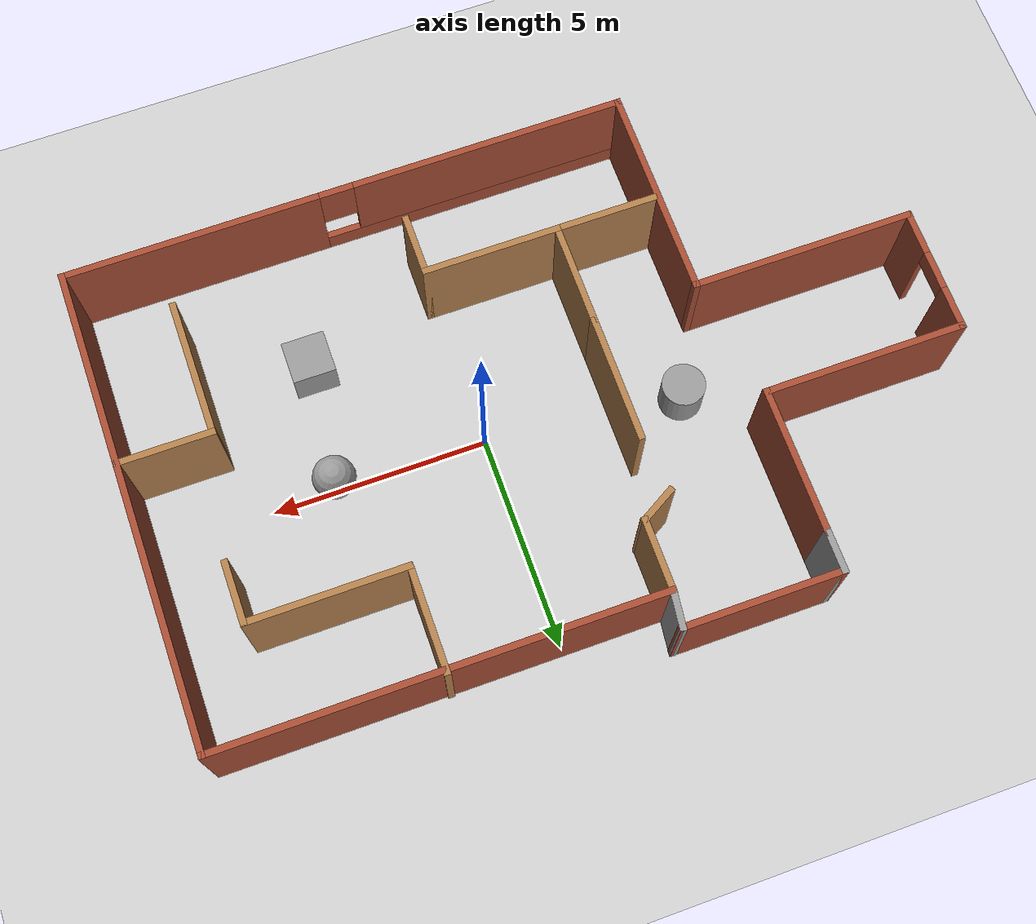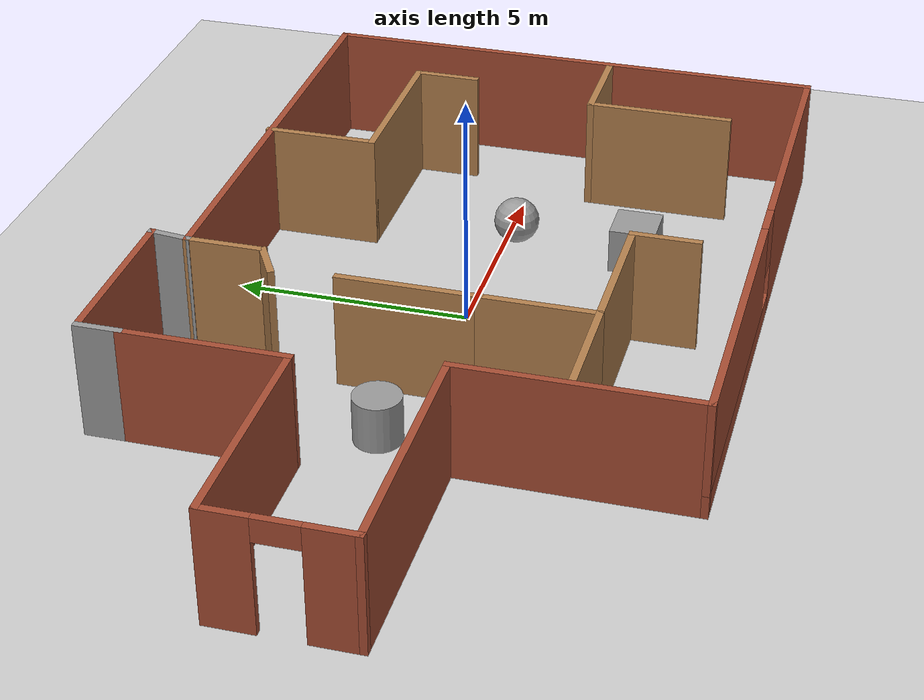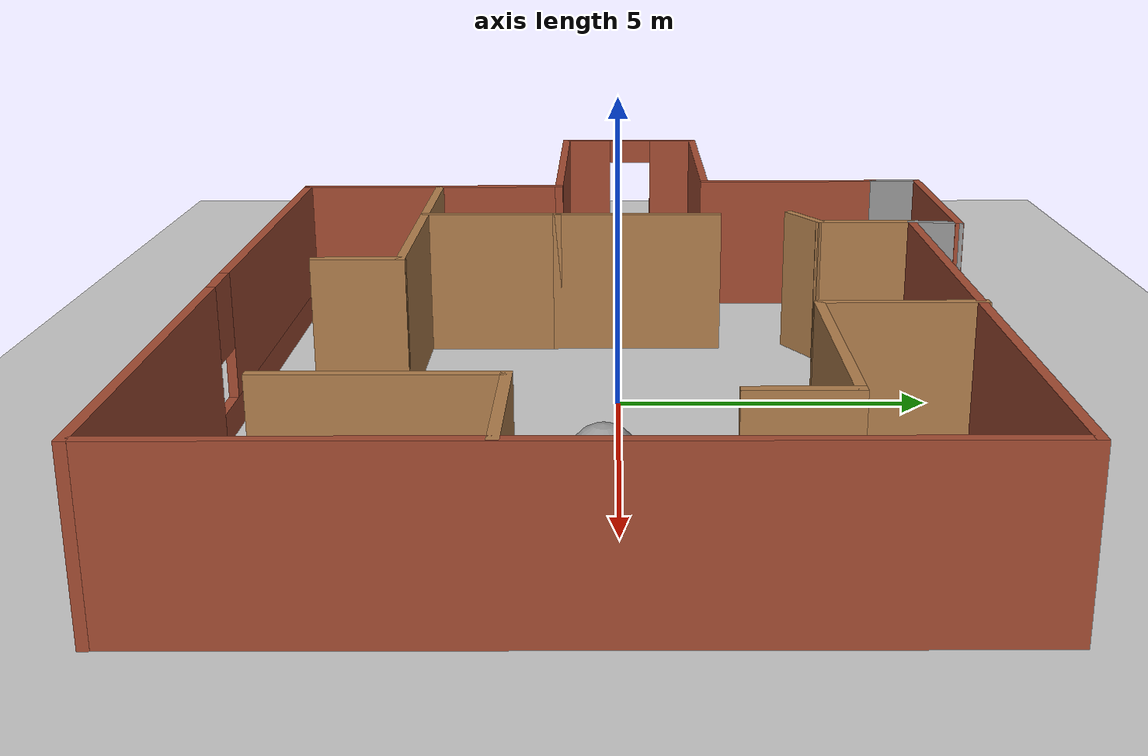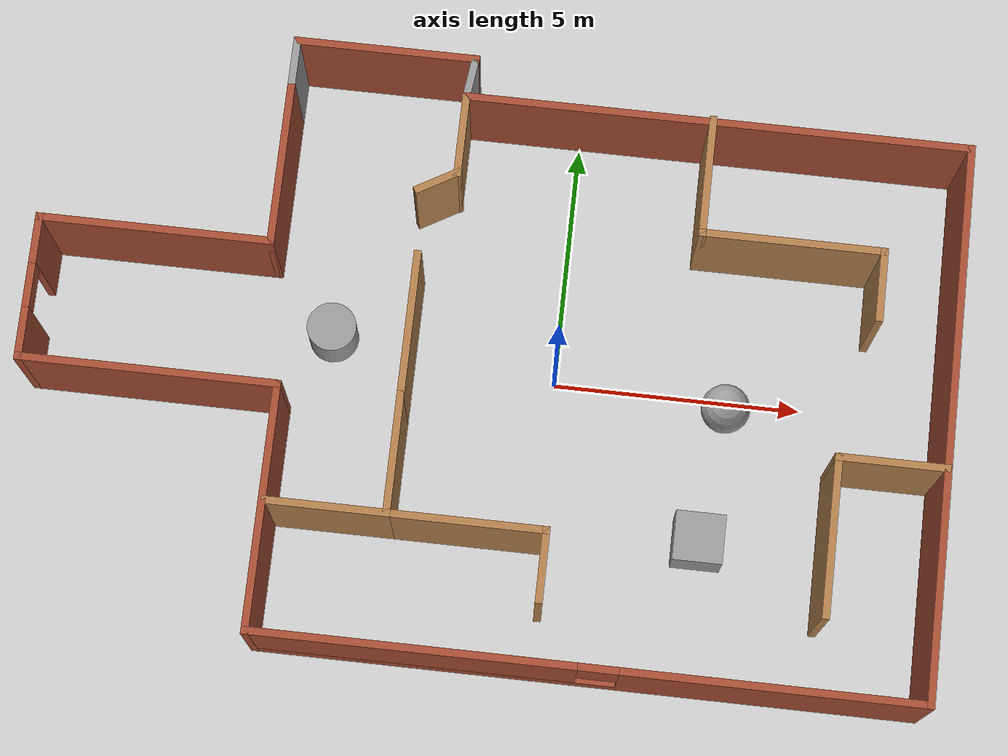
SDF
<sdf version="1.7">
 <world name="default">
  <light name="sun" type="directional">
   <pose>0 0 10 0 -0 0</pose>
   <diffuse>0.8 0.8 0.8 1</diffuse>
   <specular>0.2 0.2 0.2 1</specular>
   <attenuation>
    <range>1000</range>
    <constant>0.9</constant>
    <linear>0.01</linear>
    <quadratic>0.001</quadratic>
   </attenuation>
   <direction>-0.5 0.1 -0.9</direction>
   <spot><inner_angle>0</inner_angle><outer_angle>0</outer_angle><falloff>0</falloff></spot>
  </light>
  <model name="ground_plane">
   <static>1</static>
   <link name="link">
    <collision name="collision">
     <geometry><plane><normal>0 0 1</normal><size>100 100</size></plane></geometry>
     <surface>
      <contact><collide_bitmask>65535</collide_bitmask></contact>
      <friction><ode><mu>100</mu><mu2>50</mu2></ode></friction>
     </surface>
    </collision>
    <visual name="visual">
     <cast_shadows>0</cast_shadows>
     <geometry><plane><normal>0 0 1</normal><size>100 100</size></plane></geometry>
     <material>
      <script><uri>file://media/materials/scripts/gazebo.material</uri><name>Gazebo/Grey</name></script>
     </material>
    </visual>
   </link>
  </model>
  <gravity>0 0 -9.8</gravity>
  <magnetic_field>6e-06 2.3e-05 -4.2e-05</magnetic_field>
  <atmosphere type="adiabatic"/>
  <physics type="ode">
   <max_step_size>0.001</max_step_size>
   <real_time_factor>1</real_time_factor>
   <real_time_update_rate>1000</real_time_update_rate>
  </physics>
  <scene><ambient>0.4 0.4 0.4 1</ambient><background>0.7 0.7 0.7 1</background><shadows>1</shadows></scene>
  <audio><device>default</device></audio>
  <spherical_coordinates>
   <surface_model>EARTH_WGS84</surface_model>
   <latitude_deg>0</latitude_deg>
   <longitude_deg>0</longitude_deg>
   <elevation>0</elevation>
   <heading_deg>0</heading_deg>
  </spherical_coordinates>
  <model name="2025.6.19">
   <pose>-1.35006 -0.011831 0 0 -0 0</pose>
   <link name="Wall_0">
    <collision name="Wall_0_Collision">
     <geometry><box><size>2.5 0.15 2.5</size></box></geometry>
     <pose>0 0 1.25 0 -0 0</pose>
    </collision>
    <visual name="Wall_0_Visual">
     <pose>0 0 1.25 0 -0 0</pose>
     <geometry><box><size>2.5 0.15 2.5</size></box></geometry>
     <material>
      <script><uri>file://media/materials/scripts/gazebo.material</uri><name>Gazebo/Wood</name></script>
      <ambient>1 1 1 1</ambient>
     </material>
     <meta><layer>0</layer></meta>
    </visual>
    <pose>-1.58994 -2.23317 0 0 -0 -1.5708</pose>
   </link>
   <link name="Wall_10">
    <collision name="Wall_10_Collision">
     <geometry><box><size>5.25 0.15 2.5</size></box></geometry>
     <pose>0 0 1.25 0 -0 0</pose>
    </collision>
    <visual name="Wall_10_Visual">
     <pose>0 0 1.25 0 -0 0</pose>
     <geometry><box><size>5.25 0.15 2.5</size></box></geometry>
     <material>
      <script><uri>file://media/materials/scripts/gazebo.material</uri><name>Gazebo/Bricks</name></script>
      <ambient>1 1 1 1</ambient>
     </material>
     <meta><layer>0</layer></meta>
    </visual>
    <pose>-6.55 -1.10436 0 0 -0 3.14159</pose>
   </link>
   <link name="Wall_11">
    <pose>-9.1 0.320638 0 0 -0 1.5708</pose>
    <visual name="Wall_11_Visual_0">
     <pose>-0.966275 0 1.25 0 -0 0</pose>
     <geometry><box><size>1.06745 0.15 2.5</size></box></geometry>
     <material>
      <script><uri>file://media/materials/scripts/gazebo.material</uri><name>Gazebo/Bricks</name></script>
      <ambient>1 1 1 1</ambient>
     </material>
     <meta><layer>0</layer></meta>
    </visual>
    <collision name="Wall_11_Collision_0">
     <geometry><box><size>1.06745 0.15 2.5</size></box></geometry>
     <pose>-0.966275 0 1.25 0 -0 0</pose>
    </collision>
    <visual name="Wall_11_Visual_1">
     <pose>0.983725 0 1.25 0 -0 0</pose>
     <geometry><box><size>1.03255 0.15 2.5</size></box></geometry>
     <material>
      <script><uri>file://media/materials/scripts/gazebo.material</uri><name>Gazebo/Bricks</name></script>
      <ambient>1 1 1 1</ambient>
     </material>
     <meta><layer>0</layer></meta>
    </visual>
    <collision name="Wall_11_Collision_1">
     <geometry><box><size>1.03255 0.15 2.5</size></box></geometry>
     <pose>0.983725 0 1.25 0 -0 0</pose>
    </collision>
    <visual name="Wall_11_Visual_2">
     <pose>0.01745 0 2.25 0 -0 0</pose>
     <geometry><box><size>0.9 0.15 0.5</size></box></geometry>
     <material>
      <script><uri>file://media/materials/scripts/gazebo.material</uri><name>Gazebo/Bricks</name></script>
      <ambient>1 1 1 1</ambient>
     </material>
     <meta><layer>0</layer></meta>
    </visual>
    <collision name="Wall_11_Collision_2">
     <geometry><box><size>0.9 0.15 0.5</size></box></geometry>
     <pose>0.01745 0 2.25 0 -0 0</pose>
    </collision>
   </link>
   <link name="Wall_12">
    <collision name="Wall_12_Collision">
     <geometry><box><size>4.75 0.15 2.5</size></box></geometry>
     <pose>0 0 1.25 0 -0 0</pose>
    </collision>
    <visual name="Wall_12_Visual">
     <pose>0 0 1.25 0 -0 0</pose>
     <geometry><box><size>4.75 0.15 2.5</size></box></geometry>
     <material>
      <script><uri>file://media/materials/scripts/gazebo.material</uri><name>Gazebo/Bricks</name></script>
      <ambient>1 1 1 1</ambient>
     </material>
     <meta><layer>0</layer></meta>
    </visual>
    <pose>-6.8 1.74564 0 0 -0 0</pose>
   </link>
   <link name="Wall_13">
    <collision name="Wall_13_Collision">
     <geometry><box><size>3.5 0.15 2.5</size></box></geometry>
     <pose>0 0 1.25 0 -0 0</pose>
    </collision>
    <visual name="Wall_13_Visual">
     <pose>0 0 1.25 0 -0 0</pose>
     <geometry><box><size>3.5 0.15 2.5</size></box></geometry>
     <material>
      <script><uri>file://media/materials/scripts/gazebo.material</uri><name>Gazebo/Bricks</name></script>
      <ambient>1 1 1 1</ambient>
     </material>
     <meta><layer>0</layer></meta>
    </visual>
    <pose>-4.5 3.42064 0 0 -0 1.5708</pose>
   </link>
   <link name="Wall_14">
    <collision name="Wall_14_Collision">
     <geometry><box><size>1 0.15 2.5</size></box></geometry>
     <pose>0 0 1.25 0 -0 0</pose>
    </collision>
    <visual name="Wall_14_Visual">
     <pose>0 0 1.25 0 -0 0</pose>
     <geometry><box><size>1 0.15 2.5</size></box></geometry>
     <material>
      <script><uri>file://media/materials/scripts/gazebo.material</uri><name>Gazebo/Grey</name></script>
      <ambient>1 1 1 1</ambient>
     </material>
     <meta><layer>0</layer></meta>
    </visual>
    <pose>-4.5 5.52064 0 0 -0 1.5708</pose>
   </link>
   <link name="Wall_16">
    <collision name="Wall_16_Collision">
     <geometry><box><size>3.75 0.15 2.5</size></box></geometry>
     <pose>0 0 1.25 0 -0 0</pose>
    </collision>
    <visual name="Wall_16_Visual">
     <pose>0 0 1.25 0 -0 0</pose>
     <geometry><box><size>3.75 0.15 2.5</size></box></geometry>
     <material>
      <script><uri>file://media/materials/scripts/gazebo.material</uri><name>Gazebo/Bricks</name></script>
      <ambient>1 1 1 1</ambient>
     </material>
     <meta><layer>0</layer></meta>
    </visual>
    <pose>-2.7 5.94564 0 0 -0 0</pose>
   </link>
   <link name="Wall_17">
    <collision name="Wall_17_Collision">
     <geometry><box><size>0.956226 0.15 2.5</size></box></geometry>
     <pose>0 0 1.25 0 -0 0</pose>
    </collision>
    <visual name="Wall_17_Visual">
     <pose>0 0 1.25 0 -0 0</pose>
     <geometry><box><size>0.956226 0.15 2.5</size></box></geometry>
     <material>
      <script><uri>file://media/materials/scripts/gazebo.material</uri><name>Gazebo/Grey</name></script>
      <ambient>1 1 1 1</ambient>
     </material>
     <meta><layer>0</layer></meta>
    </visual>
    <pose>-0.950001 5.54564 0 0 -0 -1.69515</pose>
   </link>
   <link name="Wall_19">
    <collision name="Wall_19_Collision">
     <geometry><box><size>3.25 0.15 2.5</size></box></geometry>
     <pose>0 0 1.25 0 -0 0</pose>
    </collision>
    <visual name="Wall_19_Visual">
     <pose>0 0 1.25 0 -0 0</pose>
     <geometry><box><size>3.25 0.15 2.5</size></box></geometry>
     <material>
      <script><uri>file://media/materials/scripts/gazebo.material</uri><name>Gazebo/Wood</name></script>
      <ambient>1 1 1 1</ambient>
     </material>
     <meta><layer>0</layer></meta>
    </visual>
    <pose>-0.039939 -3.40817 0 0 -0 0</pose>
   </link>
   <link name="Wall_2">
    <collision name="Wall_2_Collision">
     <geometry><box><size>3 0.15 2.5</size></box></geometry>
     <pose>0 0 1.25 0 -0 0</pose>
    </collision>
    <visual name="Wall_2_Visual">
     <pose>0 0 1.25 0 -0 0</pose>
     <geometry><box><size>3 0.15 2.5</size></box></geometry>
     <material>
      <script><uri>file://media/materials/scripts/gazebo.material</uri><name>Gazebo/Wood</name></script>
      <ambient>1 1 1 1</ambient>
     </material>
     <meta><layer>0</layer></meta>
    </visual>
    <pose>-1.58994 0.366831 0 0 -0 1.5708</pose>
   </link>
   <link name="Wall_20">
    <collision name="Wall_20_Collision">
     <geometry><box><size>1.5 0.15 2.5</size></box></geometry>
     <pose>0 0 1.25 0 -0 0</pose>
    </collision>
    <visual name="Wall_20_Visual">
     <pose>0 0 1.25 0 -0 0</pose>
     <geometry><box><size>1.5 0.15 2.5</size></box></geometry>
     <material>
      <script><uri>file://media/materials/scripts/gazebo.material</uri><name>Gazebo/Wood</name></script>
      <ambient>1 1 1 1</ambient>
     </material>
     <meta><layer>0</layer></meta>
    </visual>
    <pose>1.51006 -4.08317 0 0 -0 -1.5708</pose>
   </link>
   <link name="Wall_22">
    <collision name="Wall_22_Collision">
     <geometry><box><size>2.5 0.15 2.5</size></box></geometry>
     <pose>0 0 1.25 0 -0 0</pose>
    </collision>
    <visual name="Wall_22_Visual">
     <pose>0 0 1.25 0 -0 0</pose>
     <geometry><box><size>2.5 0.15 2.5</size></box></geometry>
     <material>
      <script><uri>file://media/materials/scripts/gazebo.material</uri><name>Gazebo/Wood</name></script>
      <ambient>1 1 1 1</ambient>
     </material>
     <meta><layer>0</layer></meta>
    </visual>
    <pose>-2.76494 -3.40817 0 0 -0 3.14159</pose>
   </link>
   <link name="Wall_24">
    <collision name="Wall_24_Collision">
     <geometry><box><size>2.5 0.15 2.5</size></box></geometry>
     <pose>0 0 1.25 0 -0 0</pose>
    </collision>
    <visual name="Wall_24_Visual">
     <pose>0 0 1.25 0 -0 0</pose>
     <geometry><box><size>2.5 0.15 2.5</size></box></geometry>
     <material>
      <script><uri>file://media/materials/scripts/gazebo.material</uri><name>Gazebo/Wood</name></script>
      <ambient>1 1 1 1</ambient>
     </material>
     <meta><layer>0</layer></meta>
    </visual>
    <pose>3.94436 4.01776 0 0 -0 -1.5708</pose>
   </link>
   <link name="Wall_25">
    <collision name="Wall_25_Collision">
     <geometry><box><size>3.75 0.15 2.5</size></box></geometry>
     <pose>0 0 1.25 0 -0 0</pose>
    </collision>
    <visual name="Wall_25_Visual">
     <pose>0 0 1.25 0 -0 0</pose>
     <geometry><box><size>3.75 0.15 2.5</size></box></geometry>
     <material>
      <script><uri>file://media/materials/scripts/gazebo.material</uri><name>Gazebo/Wood</name></script>
      <ambient>1 1 1 1</ambient>
     </material>
     <meta><layer>0</layer></meta>
    </visual>
    <pose>5.74436 2.84276 0 0 -0 0</pose>
   </link>
   <link name="Wall_26">
    <collision name="Wall_26_Collision">
     <geometry><box><size>1.5 0.15 2.5</size></box></geometry>
     <pose>0 0 1.25 0 -0 0</pose>
    </collision>
    <visual name="Wall_26_Visual">
     <pose>0 0 1.25 0 -0 0</pose>
     <geometry><box><size>1.5 0.15 2.5</size></box></geometry>
     <material>
      <script><uri>file://media/materials/scripts/gazebo.material</uri><name>Gazebo/Wood</name></script>
      <ambient>1 1 1 1</ambient>
     </material>
     <meta><layer>0</layer></meta>
    </visual>
    <pose>7.54436 2.16776 0 0 -0 -1.5708</pose>
   </link>
   <link name="Wall_28">
    <collision name="Wall_28_Collision">
     <geometry><box><size>2.25 0.15 2.5</size></box></geometry>
     <pose>0 0 1.25 0 -0 0</pose>
    </collision>
    <visual name="Wall_28_Visual">
     <pose>0 0 1.25 0 -0 0</pose>
     <geometry><box><size>2.25 0.15 2.5</size></box></geometry>
     <material>
      <script><uri>file://media/materials/scripts/gazebo.material</uri><name>Gazebo/Wood</name></script>
      <ambient>1 1 1 1</ambient>
     </material>
     <meta><layer>0</layer></meta>
    </visual>
    <pose>8.03222 -1.36105 0 0 -0 3.14159</pose>
   </link>
   <link name="Wall_29">
    <collision name="Wall_29_Collision">
     <geometry><box><size>3.25 0.15 2.5</size></box></geometry>
     <pose>0 0 1.25 0 -0 0</pose>
    </collision>
    <visual name="Wall_29_Visual">
     <pose>0 0 1.25 0 -0 0</pose>
     <geometry><box><size>3.25 0.15 2.5</size></box></geometry>
     <material>
      <script><uri>file://media/materials/scripts/gazebo.material</uri><name>Gazebo/Wood</name></script>
      <ambient>1 1 1 1</ambient>
     </material>
     <meta><layer>0</layer></meta>
    </visual>
    <pose>6.98222 -2.91105 0 0 -0 -1.5708</pose>
   </link>
   <link name="Wall_4">
    <collision name="Wall_4_Collision">
     <geometry><box><size>1 0.15 2.5</size></box></geometry>
     <pose>0 0 1.25 0 -0 0</pose>
    </collision>
    <visual name="Wall_4_Visual">
     <pose>0 0 1.25 0 -0 0</pose>
     <geometry><box><size>1 0.15 2.5</size></box></geometry>
     <material>
      <script><uri>file://media/materials/scripts/gazebo.material</uri><name>Gazebo/Wood</name></script>
      <ambient>1 1 1 1</ambient>
     </material>
     <meta><layer>0</layer></meta>
    </visual>
    <pose>-1.36806 3.33314 0 0 -0 0.523599</pose>
   </link>
   <link name="Wall_5">
    <collision name="Wall_5_Collision">
     <geometry><box><size>1.75 0.15 2.5</size></box></geometry>
     <pose>0 0 1.25 0 -0 0</pose>
    </collision>
    <visual name="Wall_5_Visual">
     <pose>0 0 1.25 0 -0 0</pose>
     <geometry><box><size>1.75 0.15 2.5</size></box></geometry>
     <material>
      <script><uri>file://media/materials/scripts/gazebo.material</uri><name>Gazebo/Wood</name></script>
      <ambient>1 1 1 1</ambient>
     </material>
     <meta><layer>0</layer></meta>
    </visual>
    <pose>-1 4.34564 0 0 -0 1.5708</pose>
   </link>
   <link name="Wall_6">
    <collision name="Wall_6_Collision">
     <geometry><box><size>10.25 0.15 2.5</size></box></geometry>
     <pose>0 0 1.25 0 -0 0</pose>
    </collision>
    <visual name="Wall_6_Visual">
     <pose>0 0 1.25 0 -0 0</pose>
     <geometry><box><size>10.25 0.15 2.5</size></box></geometry>
     <material>
      <script><uri>file://media/materials/scripts/gazebo.material</uri><name>Gazebo/Bricks</name></script>
      <ambient>1 1 1 1</ambient>
     </material>
     <meta><layer>0</layer></meta>
    </visual>
    <pose>4.05 5.14564 0 0 -0 0</pose>
   </link>
   <link name="Wall_7">
    <collision name="Wall_7_Collision">
     <geometry><box><size>11.25 0.15 2.5</size></box></geometry>
     <pose>0 0 1.25 0 -0 0</pose>
    </collision>
    <visual name="Wall_7_Visual">
     <pose>0 0 1.25 0 -0 0</pose>
     <geometry><box><size>11.25 0.15 2.5</size></box></geometry>
     <material>
      <script><uri>file://media/materials/scripts/gazebo.material</uri><name>Gazebo/Bricks</name></script>
      <ambient>1 1 1 1</ambient>
     </material>
     <meta><layer>0</layer></meta>
    </visual>
    <pose>9.1 -0.404362 0 0 -0 -1.5708</pose>
   </link>
   <link name="Wall_8">
    <pose>2.55 -5.95436 0 0 -0 3.14159</pose>
    <visual name="Wall_8_Visual_0">
     <pose>-3.62307 0 1.25 0 -0 0</pose>
     <geometry><box><size>6.00385 0.15 2.5</size></box></geometry>
     <material>
      <script><uri>file://media/materials/scripts/gazebo.material</uri><name>Gazebo/Bricks</name></script>
      <ambient>1 1 1 1</ambient>
     </material>
     <meta><layer>0</layer></meta>
    </visual>
    <collision name="Wall_8_Collision_0">
     <geometry><box><size>6.00385 0.15 2.5</size></box></geometry>
     <pose>-3.62307 0 1.25 0 -0 0</pose>
    </collision>
    <visual name="Wall_8_Visual_1">
     <pose>3.00193 0 0.25 0 -0 0</pose>
     <geometry><box><size>7.24615 0.15 0.5</size></box></geometry>
     <material>
      <script><uri>file://media/materials/scripts/gazebo.material</uri><name>Gazebo/Bricks</name></script>
      <ambient>1 1 1 1</ambient>
     </material>
     <meta><layer>0</layer></meta>
    </visual>
    <collision name="Wall_8_Collision_1">
     <geometry><box><size>7.24615 0.15 0.5</size></box></geometry>
     <pose>3.00193 0 0.25 0 -0 0</pose>
    </collision>
    <visual name="Wall_8_Visual_2">
     <pose>3.40193 0 1.5 0 -0 0</pose>
     <geometry><box><size>6.44615 0.15 2</size></box></geometry>
     <material>
      <script><uri>file://media/materials/scripts/gazebo.material</uri><name>Gazebo/Bricks</name></script>
      <ambient>1 1 1 1</ambient>
     </material>
     <meta><layer>0</layer></meta>
    </visual>
    <collision name="Wall_8_Collision_2">
     <geometry><box><size>6.44615 0.15 2</size></box></geometry>
     <pose>3.40193 0 1.5 0 -0 0</pose>
    </collision>
    <visual name="Wall_8_Visual_3">
     <pose>-0.221146 0 1.9 0 -0 0</pose>
     <geometry><box><size>0.8 0.15 1.2</size></box></geometry>
     <material>
      <script><uri>file://media/materials/scripts/gazebo.material</uri><name>Gazebo/Bricks</name></script>
      <ambient>1 1 1 1</ambient>
     </material>
     <meta><layer>0</layer></meta>
    </visual>
    <collision name="Wall_8_Collision_3">
     <geometry><box><size>0.8 0.15 1.2</size></box></geometry>
     <pose>-0.221146 0 1.9 0 -0 0</pose>
    </collision>
   </link>
   <link name="Wall_9">
    <collision name="Wall_9_Collision">
     <geometry><box><size>5 0.15 2.5</size></box></geometry>
     <pose>0 0 1.25 0 -0 0</pose>
    </collision>
    <visual name="Wall_9_Visual">
     <pose>0 0 1.25 0 -0 0</pose>
     <geometry><box><size>5 0.15 2.5</size></box></geometry>
     <material>
      <script><uri>file://media/materials/scripts/gazebo.material</uri><name>Gazebo/Bricks</name></script>
      <ambient>1 1 1 1</ambient>
     </material>
     <meta><layer>0</layer></meta>
    </visual>
    <pose>-4 -3.52936 0 0 -0 1.5708</pose>
   </link>
   <static>1</static>
  </model>
  <model name="unit_sphere">
   <pose>3.48551 -0.209762 0.5 0 -0 0</pose>
   <link name="link">
    <inertial>
     <mass>1</mass>
     <inertia><ixx>0.1</ixx><ixy>0</ixy><ixz>0</ixz><iyy>0.1</iyy><iyz>0</iyz><izz>0.1</izz></inertia>
    </inertial>
    <collision name="collision"><geometry><sphere><radius>0.5</radius></sphere></geometry></collision>
    <visual name="visual">
     <geometry><sphere><radius>0.5</radius></sphere></geometry>
     <material>
      <script><name>Gazebo/Grey</name><uri>file://media/materials/scripts/gazebo.material</uri></script>
     </material>
    </visual>
   </link>
  </model>
  <model name="unit_box">
   <pose>3.17567 -2.96287 0.499995 -1e-05 -0 0</pose>
   <link name="link">
    <inertial>
     <mass>1</mass>
     <inertia>
      <ixx>0.166667</ixx>
      <ixy>0</ixy>
      <ixz>0</ixz>
      <iyy>0.166667</iyy>
      <iyz>0</iyz>
      <izz>0.166667</izz>
     </inertia>
    </inertial>
    <collision name="collision"><geometry><box><size>1 1 1</size></box></geometry></collision>
    <visual name="visual">
     <geometry><box><size>1 1 1</size></box></geometry>
     <material>
      <script><name>Gazebo/Grey</name><uri>file://media/materials/scripts/gazebo.material</uri></script>
     </material>
    </visual>
   </link>
  </model>
  <model name="unit_cylinder">
   <pose>-4.5738 0.50216 0.499997 3e-06 4e-06 -0</pose>
   <link name="link">
    <inertial>
     <mass>1</mass>
     <inertia><ixx>0.145833</ixx><ixy>0</ixy><ixz>0</ixz><iyy>0.145833</iyy><iyz>0</iyz><izz>0.125</izz></inertia>
    </inertial>
    <collision name="collision">
     <geometry><cylinder><radius>0.5</radius><length>1</length></cylinder></geometry>
    </collision>
    <visual name="visual">
     <geometry><cylinder><radius>0.5</radius><length>1</length></cylinder></geometry>
     <material>
      <script><name>Gazebo/Grey</name><uri>file://media/materials/scripts/gazebo.material</uri></script>
     </material>
    </visual>
   </link>
  </model>
 </world>
</sdf>
